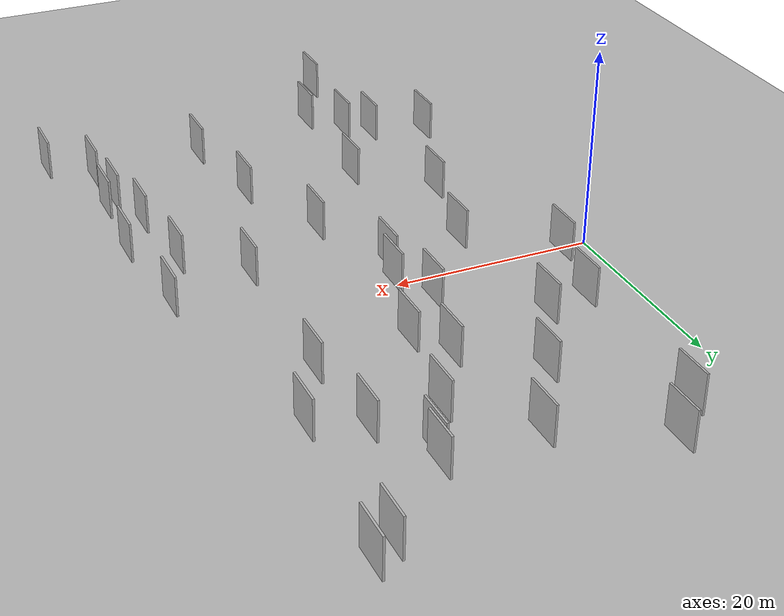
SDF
<?xml version="1.0" encoding="utf-8"?>

<sdf version="1.6">

   <world name="default">

      <gui fullscreen="0">

         <camera name="user_camera">

            <pose>-15 0 4.57585 0 0 0</pose>

            <view_controller>orbit</view_controller>

         </camera>

      </gui>

      <scene>

         <sky>

           <clouds>

             <speed>12</speed>

           </clouds>

         </sky>

         <ambient>0.4 0.4 0.4 1</ambient>

         <background>0.7 0.7 0.7 1</background>

         <shadows>1</shadows>

      </scene>

      <gravity>0 0 -9.8066</gravity>

      <magnetic_field>6e-06 2.3e-05 -4.2e-05</magnetic_field>

      <physics default="0" name="default_physics" type="ode">

         <ode>

            <solver>

               <type>quick</type>

               <iters>10</iters>

               <sor>1.0</sor>

               <use_dynamic_moi_rescaling>0</use_dynamic_moi_rescaling>

            </solver>

            <constraints>

               <cfm>0</cfm>

               <erp>0.2</erp>

               <contact_max_correcting_vel>100</contact_max_correcting_vel>

               <contact_surface_layer>0.001</contact_surface_layer>

            </constraints>

         </ode>

         <max_step_size>0.004</max_step_size>

         <real_time_factor>1</real_time_factor>

         <real_time_update_rate>250</real_time_update_rate>

      </physics>

      <light name="sun" type="directional">

         <cast_shadows>1</cast_shadows>

         <pose>0 0 10 0 0 0</pose>

         <diffuse>0.8 0.8 0.8 1</diffuse>

         <specular>0.2 0.2 0.2 1</specular>

         <attenuation>

            <range>1000</range>

            <constant>0.9</constant>

            <linear>0.01</linear>

            <quadratic>0.001</quadratic>

         </attenuation>

         <direction>-0.5 0.1 -0.9</direction>

      </light>

      <include>

         <name>ground_plane_1</name>

         <uri>model://HANNAS_ground_plane</uri>

         <pose>0 0 0  0 0 0</pose>

      </include>

      <include>

         <name>ground_plane_2</name>

         <uri>model://HANNAS_ground_plane</uri>

         <pose>100 0 0  0 0 0</pose>

      </include>

      <model name="HANNAS_wall_1">

         <static>1</static>

         <pose frame="">39.0134 36.8604 2.5 0.000000 0.000000 1.570796</pose>

         <link name="link">

            <pose frame="">0 0 2.00 0 0 0</pose>

            <collision name="collision">

               <geometry>

                  <box>

                     <size>4.00 0.2 4.00</size>

                  </box>

               </geometry>

               <max_contacts>10</max_contacts>

               <surface>

                  <contact>

                     <ode/>

                  </contact>

                  <bounce/>

                  <friction>

                     <torsional>

                        <ode/>

                     </torsional>

                     <ode/>

                  </friction>

               </surface>

            </collision>

            <visual name="visual">

               <cast_shadows>0</cast_shadows>

               <geometry>

                  <box>

                     <size>4.00 0.2 4.00</size>

                  </box>

               </geometry>

               <material>

                  <script>

                     <uri>model://HANNAS_wall/materials/scripts</uri>

                     <uri>model://HANNAS_wall/materials/textures</uri>

                     <name>vrc/HANNAS_wall</name>

                  </script>

               </material>

            </visual>

            <self_collide>0</self_collide>

            <enable_wind>0</enable_wind>

            <kinematic>0</kinematic>

         </link>

      </model>

      <model name="HANNAS_wall_2">

         <static>1</static>

         <pose frame="">38.7398 -7.8205 2.5 0.000000 0.000000 1.570796</pose>

         <link name="link">

            <pose frame="">0 0 2.00 0 0 0</pose>

            <collision name="collision">

               <geometry>

                  <box>

                     <size>4.00 0.2 4.00</size>

                  </box>

               </geometry>

               <max_contacts>10</max_contacts>

               <surface>

                  <contact>

                     <ode/>

                  </contact>

                  <bounce/>

                  <friction>

                     <torsional>

                        <ode/>

                     </torsional>

                     <ode/>

                  </friction>

               </surface>

            </collision>

            <visual name="visual">

               <cast_shadows>0</cast_shadows>

               <geometry>

                  <box>

                     <size>4.00 0.2 4.00</size>

                  </box>

               </geometry>

               <material>

                  <script>

                     <uri>model://HANNAS_wall/materials/scripts</uri>

                     <uri>model://HANNAS_wall/materials/textures</uri>

                     <name>vrc/HANNAS_wall</name>

                  </script>

               </material>

            </visual>

            <self_collide>0</self_collide>

            <enable_wind>0</enable_wind>

            <kinematic>0</kinematic>

         </link>

      </model>

      <model name="HANNAS_wall_3">

         <static>1</static>

         <pose frame="">24.6371 12.2118 2.5 0.000000 0.000000 1.570796</pose>

         <link name="link">

            <pose frame="">0 0 2.00 0 0 0</pose>

            <collision name="collision">

               <geometry>

                  <box>

                     <size>4.00 0.2 4.00</size>

                  </box>

               </geometry>

               <max_contacts>10</max_contacts>

               <surface>

                  <contact>

                     <ode/>

                  </contact>

                  <bounce/>

                  <friction>

                     <torsional>

                        <ode/>

                     </torsional>

                     <ode/>

                  </friction>

               </surface>

            </collision>

            <visual name="visual">

               <cast_shadows>0</cast_shadows>

               <geometry>

                  <box>

                     <size>4.00 0.2 4.00</size>

                  </box>

               </geometry>

               <material>

                  <script>

                     <uri>model://HANNAS_wall/materials/scripts</uri>

                     <uri>model://HANNAS_wall/materials/textures</uri>

                     <name>vrc/HANNAS_wall</name>

                  </script>

               </material>

            </visual>

            <self_collide>0</self_collide>

            <enable_wind>0</enable_wind>

            <kinematic>0</kinematic>

         </link>

      </model>

      <model name="HANNAS_wall_4">

         <static>1</static>

         <pose frame="">32.9320 22.3779 2.5 0.000000 0.000000 1.570796</pose>

         <link name="link">

            <pose frame="">0 0 2.00 0 0 0</pose>

            <collision name="collision">

               <geometry>

                  <box>

                     <size>4.00 0.2 4.00</size>

                  </box>

               </geometry>

               <max_contacts>10</max_contacts>

               <surface>

                  <contact>

                     <ode/>

                  </contact>

                  <bounce/>

                  <friction>

                     <torsional>

                        <ode/>

                     </torsional>

                     <ode/>

                  </friction>

               </surface>

            </collision>

            <visual name="visual">

               <cast_shadows>0</cast_shadows>

               <geometry>

                  <box>

                     <size>4.00 0.2 4.00</size>

                  </box>

               </geometry>

               <material>

                  <script>

                     <uri>model://HANNAS_wall/materials/scripts</uri>

                     <uri>model://HANNAS_wall/materials/textures</uri>

                     <name>vrc/HANNAS_wall</name>

                  </script>

               </material>

            </visual>

            <self_collide>0</self_collide>

            <enable_wind>0</enable_wind>

            <kinematic>0</kinematic>

         </link>

      </model>

      <model name="HANNAS_wall_5">

         <static>1</static>

         <pose frame="">40.7727 -21.5991 2.5 0.000000 0.000000 1.570796</pose>

         <link name="link">

            <pose frame="">0 0 2.00 0 0 0</pose>

            <collision name="collision">

               <geometry>

                  <box>

                     <size>4.00 0.2 4.00</size>

                  </box>

               </geometry>

               <max_contacts>10</max_contacts>

               <surface>

                  <contact>

                     <ode/>

                  </contact>

                  <bounce/>

                  <friction>

                     <torsional>

                        <ode/>

                     </torsional>

                     <ode/>

                  </friction>

               </surface>

            </collision>

            <visual name="visual">

               <cast_shadows>0</cast_shadows>

               <geometry>

                  <box>

                     <size>4.00 0.2 4.00</size>

                  </box>

               </geometry>

               <material>

                  <script>

                     <uri>model://HANNAS_wall/materials/scripts</uri>

                     <uri>model://HANNAS_wall/materials/textures</uri>

                     <name>vrc/HANNAS_wall</name>

                  </script>

               </material>

            </visual>

            <self_collide>0</self_collide>

            <enable_wind>0</enable_wind>

            <kinematic>0</kinematic>

         </link>

      </model>

      <model name="HANNAS_wall_6">

         <static>1</static>

         <pose frame="">37.4155 20.2576 2.5 0.000000 0.000000 1.570796</pose>

         <link name="link">

            <pose frame="">0 0 2.00 0 0 0</pose>

            <collision name="collision">

               <geometry>

                  <box>

                     <size>4.00 0.2 4.00</size>

                  </box>

               </geometry>

               <max_contacts>10</max_contacts>

               <surface>

                  <contact>

                     <ode/>

                  </contact>

                  <bounce/>

                  <friction>

                     <torsional>

                        <ode/>

                     </torsional>

                     <ode/>

                  </friction>

               </surface>

            </collision>

            <visual name="visual">

               <cast_shadows>0</cast_shadows>

               <geometry>

                  <box>

                     <size>4.00 0.2 4.00</size>

                  </box>

               </geometry>

               <material>

                  <script>

                     <uri>model://HANNAS_wall/materials/scripts</uri>

                     <uri>model://HANNAS_wall/materials/textures</uri>

                     <name>vrc/HANNAS_wall</name>

                  </script>

               </material>

            </visual>

            <self_collide>0</self_collide>

            <enable_wind>0</enable_wind>

            <kinematic>0</kinematic>

         </link>

      </model>

      <model name="HANNAS_wall_7">

         <static>1</static>

         <pose frame="">45.2404 -31.1126 2.5 0.000000 0.000000 1.570796</pose>

         <link name="link">

            <pose frame="">0 0 2.00 0 0 0</pose>

            <collision name="collision">

               <geometry>

                  <box>

                     <size>4.00 0.2 4.00</size>

                  </box>

               </geometry>

               <max_contacts>10</max_contacts>

               <surface>

                  <contact>

                     <ode/>

                  </contact>

                  <bounce/>

                  <friction>

                     <torsional>

                        <ode/>

                     </torsional>

                     <ode/>

                  </friction>

               </surface>

            </collision>

            <visual name="visual">

               <cast_shadows>0</cast_shadows>

               <geometry>

                  <box>

                     <size>4.00 0.2 4.00</size>

                  </box>

               </geometry>

               <material>

                  <script>

                     <uri>model://HANNAS_wall/materials/scripts</uri>

                     <uri>model://HANNAS_wall/materials/textures</uri>

                     <name>vrc/HANNAS_wall</name>

                  </script>

               </material>

            </visual>

            <self_collide>0</self_collide>

            <enable_wind>0</enable_wind>

            <kinematic>0</kinematic>

         </link>

      </model>

      <model name="HANNAS_wall_8">

         <static>1</static>

         <pose frame="">33.8251 13.3349 2.5 0.000000 0.000000 1.570796</pose>

         <link name="link">

            <pose frame="">0 0 2.00 0 0 0</pose>

            <collision name="collision">

               <geometry>

                  <box>

                     <size>4.00 0.2 4.00</size>

                  </box>

               </geometry>

               <max_contacts>10</max_contacts>

               <surface>

                  <contact>

                     <ode/>

                  </contact>

                  <bounce/>

                  <friction>

                     <torsional>

                        <ode/>

                     </torsional>

                     <ode/>

                  </friction>

               </surface>

            </collision>

            <visual name="visual">

               <cast_shadows>0</cast_shadows>

               <geometry>

                  <box>

                     <size>4.00 0.2 4.00</size>

                  </box>

               </geometry>

               <material>

                  <script>

                     <uri>model://HANNAS_wall/materials/scripts</uri>

                     <uri>model://HANNAS_wall/materials/textures</uri>

                     <name>vrc/HANNAS_wall</name>

                  </script>

               </material>

            </visual>

            <self_collide>0</self_collide>

            <enable_wind>0</enable_wind>

            <kinematic>0</kinematic>

         </link>

      </model>

      <model name="HANNAS_wall_9">

         <static>1</static>

         <pose frame="">10.6531 -11.6254 2.5 0.000000 0.000000 1.570796</pose>

         <link name="link">

            <pose frame="">0 0 2.00 0 0 0</pose>

            <collision name="collision">

               <geometry>

                  <box>

                     <size>4.00 0.2 4.00</size>

                  </box>

               </geometry>

               <max_contacts>10</max_contacts>

               <surface>

                  <contact>

                     <ode/>

                  </contact>

                  <bounce/>

                  <friction>

                     <torsional>

                        <ode/>

                     </torsional>

                     <ode/>

                  </friction>

               </surface>

            </collision>

            <visual name="visual">

               <cast_shadows>0</cast_shadows>

               <geometry>

                  <box>

                     <size>4.00 0.2 4.00</size>

                  </box>

               </geometry>

               <material>

                  <script>

                     <uri>model://HANNAS_wall/materials/scripts</uri>

                     <uri>model://HANNAS_wall/materials/textures</uri>

                     <name>vrc/HANNAS_wall</name>

                  </script>

               </material>

            </visual>

            <self_collide>0</self_collide>

            <enable_wind>0</enable_wind>

            <kinematic>0</kinematic>

         </link>

      </model>

      <model name="HANNAS_wall_10">

         <static>1</static>

         <pose frame="">19.7617 6.8065 2.5 0.000000 0.000000 1.570796</pose>

         <link name="link">

            <pose frame="">0 0 2.00 0 0 0</pose>

            <collision name="collision">

               <geometry>

                  <box>

                     <size>4.00 0.2 4.00</size>

                  </box>

               </geometry>

               <max_contacts>10</max_contacts>

               <surface>

                  <contact>

                     <ode/>

                  </contact>

                  <bounce/>

                  <friction>

                     <torsional>

                        <ode/>

                     </torsional>

                     <ode/>

                  </friction>

               </surface>

            </collision>

            <visual name="visual">

               <cast_shadows>0</cast_shadows>

               <geometry>

                  <box>

                     <size>4.00 0.2 4.00</size>

                  </box>

               </geometry>

               <material>

                  <script>

                     <uri>model://HANNAS_wall/materials/scripts</uri>

                     <uri>model://HANNAS_wall/materials/textures</uri>

                     <name>vrc/HANNAS_wall</name>

                  </script>

               </material>

            </visual>

            <self_collide>0</self_collide>

            <enable_wind>0</enable_wind>

            <kinematic>0</kinematic>

         </link>

      </model>

      <model name="HANNAS_wall_11">

         <static>1</static>

         <pose frame="">11.3682 -26.1498 2.5 0.000000 0.000000 1.570796</pose>

         <link name="link">

            <pose frame="">0 0 2.00 0 0 0</pose>

            <collision name="collision">

               <geometry>

                  <box>

                     <size>4.00 0.2 4.00</size>

                  </box>

               </geometry>

               <max_contacts>10</max_contacts>

               <surface>

                  <contact>

                     <ode/>

                  </contact>

                  <bounce/>

                  <friction>

                     <torsional>

                        <ode/>

                     </torsional>

                     <ode/>

                  </friction>

               </surface>

            </collision>

            <visual name="visual">

               <cast_shadows>0</cast_shadows>

               <geometry>

                  <box>

                     <size>4.00 0.2 4.00</size>

                  </box>

               </geometry>

               <material>

                  <script>

                     <uri>model://HANNAS_wall/materials/scripts</uri>

                     <uri>model://HANNAS_wall/materials/textures</uri>

                     <name>vrc/HANNAS_wall</name>

                  </script>

               </material>

            </visual>

            <self_collide>0</self_collide>

            <enable_wind>0</enable_wind>

            <kinematic>0</kinematic>

         </link>

      </model>

      <model name="HANNAS_wall_12">

         <static>1</static>

         <pose frame="">42.4686 -11.6364 2.5 0.000000 0.000000 1.570796</pose>

         <link name="link">

            <pose frame="">0 0 2.00 0 0 0</pose>

            <collision name="collision">

               <geometry>

                  <box>

                     <size>4.00 0.2 4.00</size>

                  </box>

               </geometry>

               <max_contacts>10</max_contacts>

               <surface>

                  <contact>

                     <ode/>

                  </contact>

                  <bounce/>

                  <friction>

                     <torsional>

                        <ode/>

                     </torsional>

                     <ode/>

                  </friction>

               </surface>

            </collision>

            <visual name="visual">

               <cast_shadows>0</cast_shadows>

               <geometry>

                  <box>

                     <size>4.00 0.2 4.00</size>

                  </box>

               </geometry>

               <material>

                  <script>

                     <uri>model://HANNAS_wall/materials/scripts</uri>

                     <uri>model://HANNAS_wall/materials/textures</uri>

                     <name>vrc/HANNAS_wall</name>

                  </script>

               </material>

            </visual>

            <self_collide>0</self_collide>

            <enable_wind>0</enable_wind>

            <kinematic>0</kinematic>

         </link>

      </model>

      <model name="HANNAS_wall_13">

         <static>1</static>

         <pose frame="">5.9294 -24.2866 2.5 0.000000 0.000000 1.570796</pose>

         <link name="link">

            <pose frame="">0 0 2.00 0 0 0</pose>

            <collision name="collision">

               <geometry>

                  <box>

                     <size>4.00 0.2 4.00</size>

                  </box>

               </geometry>

               <max_contacts>10</max_contacts>

               <surface>

                  <contact>

                     <ode/>

                  </contact>

                  <bounce/>

                  <friction>

                     <torsional>

                        <ode/>

                     </torsional>

                     <ode/>

                  </friction>

               </surface>

            </collision>

            <visual name="visual">

               <cast_shadows>0</cast_shadows>

               <geometry>

                  <box>

                     <size>4.00 0.2 4.00</size>

                  </box>

               </geometry>

               <material>

                  <script>

                     <uri>model://HANNAS_wall/materials/scripts</uri>

                     <uri>model://HANNAS_wall/materials/textures</uri>

                     <name>vrc/HANNAS_wall</name>

                  </script>

               </material>

            </visual>

            <self_collide>0</self_collide>

            <enable_wind>0</enable_wind>

            <kinematic>0</kinematic>

         </link>

      </model>

      <model name="HANNAS_wall_14">

         <static>1</static>

         <pose frame="">24.6524 -8.5791 2.5 0.000000 0.000000 1.570796</pose>

         <link name="link">

            <pose frame="">0 0 2.00 0 0 0</pose>

            <collision name="collision">

               <geometry>

                  <box>

                     <size>4.00 0.2 4.00</size>

                  </box>

               </geometry>

               <max_contacts>10</max_contacts>

               <surface>

                  <contact>

                     <ode/>

                  </contact>

                  <bounce/>

                  <friction>

                     <torsional>

                        <ode/>

                     </torsional>

                     <ode/>

                  </friction>

               </surface>

            </collision>

            <visual name="visual">

               <cast_shadows>0</cast_shadows>

               <geometry>

                  <box>

                     <size>4.00 0.2 4.00</size>

                  </box>

               </geometry>

               <material>

                  <script>

                     <uri>model://HANNAS_wall/materials/scripts</uri>

                     <uri>model://HANNAS_wall/materials/textures</uri>

                     <name>vrc/HANNAS_wall</name>

                  </script>

               </material>

            </visual>

            <self_collide>0</self_collide>

            <enable_wind>0</enable_wind>

            <kinematic>0</kinematic>

         </link>

      </model>

      <model name="HANNAS_wall_15">

         <static>1</static>

         <pose frame="">41.9282 -20.5291 2.5 0.000000 0.000000 1.570796</pose>

         <link name="link">

            <pose frame="">0 0 2.00 0 0 0</pose>

            <collision name="collision">

               <geometry>

                  <box>

                     <size>4.00 0.2 4.00</size>

                  </box>

               </geometry>

               <max_contacts>10</max_contacts>

               <surface>

                  <contact>

                     <ode/>

                  </contact>

                  <bounce/>

                  <friction>

                     <torsional>

                        <ode/>

                     </torsional>

                     <ode/>

                  </friction>

               </surface>

            </collision>

            <visual name="visual">

               <cast_shadows>0</cast_shadows>

               <geometry>

                  <box>

                     <size>4.00 0.2 4.00</size>

                  </box>

               </geometry>

               <material>

                  <script>

                     <uri>model://HANNAS_wall/materials/scripts</uri>

                     <uri>model://HANNAS_wall/materials/textures</uri>

                     <name>vrc/HANNAS_wall</name>

                  </script>

               </material>

            </visual>

            <self_collide>0</self_collide>

            <enable_wind>0</enable_wind>

            <kinematic>0</kinematic>

         </link>

      </model>

      <model name="HANNAS_wall_16">

         <static>1</static>

         <pose frame="">13.0141 -38.7148 2.5 0.000000 0.000000 1.570796</pose>

         <link name="link">

            <pose frame="">0 0 2.00 0 0 0</pose>

            <collision name="collision">

               <geometry>

                  <box>

                     <size>4.00 0.2 4.00</size>

                  </box>

               </geometry>

               <max_contacts>10</max_contacts>

               <surface>

                  <contact>

                     <ode/>

                  </contact>

                  <bounce/>

                  <friction>

                     <torsional>

                        <ode/>

                     </torsional>

                     <ode/>

                  </friction>

               </surface>

            </collision>

            <visual name="visual">

               <cast_shadows>0</cast_shadows>

               <geometry>

                  <box>

                     <size>4.00 0.2 4.00</size>

                  </box>

               </geometry>

               <material>

                  <script>

                     <uri>model://HANNAS_wall/materials/scripts</uri>

                     <uri>model://HANNAS_wall/materials/textures</uri>

                     <name>vrc/HANNAS_wall</name>

                  </script>

               </material>

            </visual>

            <self_collide>0</self_collide>

            <enable_wind>0</enable_wind>

            <kinematic>0</kinematic>

         </link>

      </model>

      <model name="HANNAS_wall_17">

         <static>1</static>

         <pose frame="">22.3509 15.6423 2.5 0.000000 0.000000 1.570796</pose>

         <link name="link">

            <pose frame="">0 0 2.00 0 0 0</pose>

            <collision name="collision">

               <geometry>

                  <box>

                     <size>4.00 0.2 4.00</size>

                  </box>

               </geometry>

               <max_contacts>10</max_contacts>

               <surface>

                  <contact>

                     <ode/>

                  </contact>

                  <bounce/>

                  <friction>

                     <torsional>

                        <ode/>

                     </torsional>

                     <ode/>

                  </friction>

               </surface>

            </collision>

            <visual name="visual">

               <cast_shadows>0</cast_shadows>

               <geometry>

                  <box>

                     <size>4.00 0.2 4.00</size>

                  </box>

               </geometry>

               <material>

                  <script>

                     <uri>model://HANNAS_wall/materials/scripts</uri>

                     <uri>model://HANNAS_wall/materials/textures</uri>

                     <name>vrc/HANNAS_wall</name>

                  </script>

               </material>

            </visual>

            <self_collide>0</self_collide>

            <enable_wind>0</enable_wind>

            <kinematic>0</kinematic>

         </link>

      </model>

      <model name="HANNAS_wall_18">

         <static>1</static>

         <pose frame="">33.3557 -3.2008 2.5 0.000000 0.000000 1.570796</pose>

         <link name="link">

            <pose frame="">0 0 2.00 0 0 0</pose>

            <collision name="collision">

               <geometry>

                  <box>

                     <size>4.00 0.2 4.00</size>

                  </box>

               </geometry>

               <max_contacts>10</max_contacts>

               <surface>

                  <contact>

                     <ode/>

                  </contact>

                  <bounce/>

                  <friction>

                     <torsional>

                        <ode/>

                     </torsional>

                     <ode/>

                  </friction>

               </surface>

            </collision>

            <visual name="visual">

               <cast_shadows>0</cast_shadows>

               <geometry>

                  <box>

                     <size>4.00 0.2 4.00</size>

                  </box>

               </geometry>

               <material>

                  <script>

                     <uri>model://HANNAS_wall/materials/scripts</uri>

                     <uri>model://HANNAS_wall/materials/textures</uri>

                     <name>vrc/HANNAS_wall</name>

                  </script>

               </material>

            </visual>

            <self_collide>0</self_collide>

            <enable_wind>0</enable_wind>

            <kinematic>0</kinematic>

         </link>

      </model>

      <model name="HANNAS_wall_19">

         <static>1</static>

         <pose frame="">7.2029 11.9406 2.5 0.000000 0.000000 1.570796</pose>

         <link name="link">

            <pose frame="">0 0 2.00 0 0 0</pose>

            <collision name="collision">

               <geometry>

                  <box>

                     <size>4.00 0.2 4.00</size>

                  </box>

               </geometry>

               <max_contacts>10</max_contacts>

               <surface>

                  <contact>

                     <ode/>

                  </contact>

                  <bounce/>

                  <friction>

                     <torsional>

                        <ode/>

                     </torsional>

                     <ode/>

                  </friction>

               </surface>

            </collision>

            <visual name="visual">

               <cast_shadows>0</cast_shadows>

               <geometry>

                  <box>

                     <size>4.00 0.2 4.00</size>

                  </box>

               </geometry>

               <material>

                  <script>

                     <uri>model://HANNAS_wall/materials/scripts</uri>

                     <uri>model://HANNAS_wall/materials/textures</uri>

                     <name>vrc/HANNAS_wall</name>

                  </script>

               </material>

            </visual>

            <self_collide>0</self_collide>

            <enable_wind>0</enable_wind>

            <kinematic>0</kinematic>

         </link>

      </model>

      <model name="HANNAS_wall_20">

         <static>1</static>

         <pose frame="">29.9802 -28.0832 2.5 0.000000 0.000000 1.570796</pose>

         <link name="link">

            <pose frame="">0 0 2.00 0 0 0</pose>

            <collision name="collision">

               <geometry>

                  <box>

                     <size>4.00 0.2 4.00</size>

                  </box>

               </geometry>

               <max_contacts>10</max_contacts>

               <surface>

                  <contact>

                     <ode/>

                  </contact>

                  <bounce/>

                  <friction>

                     <torsional>

                        <ode/>

                     </torsional>

                     <ode/>

                  </friction>

               </surface>

            </collision>

            <visual name="visual">

               <cast_shadows>0</cast_shadows>

               <geometry>

                  <box>

                     <size>4.00 0.2 4.00</size>

                  </box>

               </geometry>

               <material>

                  <script>

                     <uri>model://HANNAS_wall/materials/scripts</uri>

                     <uri>model://HANNAS_wall/materials/textures</uri>

                     <name>vrc/HANNAS_wall</name>

                  </script>

               </material>

            </visual>

            <self_collide>0</self_collide>

            <enable_wind>0</enable_wind>

            <kinematic>0</kinematic>

         </link>

      </model>

      <model name="HANNAS_wall_21">

         <static>1</static>

         <pose frame="">11.6890 13.0171 2.5 0.000000 0.000000 1.570796</pose>

         <link name="link">

            <pose frame="">0 0 2.00 0 0 0</pose>

            <collision name="collision">

               <geometry>

                  <box>

                     <size>4.00 0.2 4.00</size>

                  </box>

               </geometry>

               <max_contacts>10</max_contacts>

               <surface>

                  <contact>

                     <ode/>

                  </contact>

                  <bounce/>

                  <friction>

                     <torsional>

                        <ode/>

                     </torsional>

                     <ode/>

                  </friction>

               </surface>

            </collision>

            <visual name="visual">

               <cast_shadows>0</cast_shadows>

               <geometry>

                  <box>

                     <size>4.00 0.2 4.00</size>

                  </box>

               </geometry>

               <material>

                  <script>

                     <uri>model://HANNAS_wall/materials/scripts</uri>

                     <uri>model://HANNAS_wall/materials/textures</uri>

                     <name>vrc/HANNAS_wall</name>

                  </script>

               </material>

            </visual>

            <self_collide>0</self_collide>

            <enable_wind>0</enable_wind>

            <kinematic>0</kinematic>

         </link>

      </model>

      <model name="HANNAS_wall_22">

         <static>1</static>

         <pose frame="">17.1662 -17.5642 2.5 0.000000 0.000000 1.570796</pose>

         <link name="link">

            <pose frame="">0 0 2.00 0 0 0</pose>

            <collision name="collision">

               <geometry>

                  <box>

                     <size>4.00 0.2 4.00</size>

                  </box>

               </geometry>

               <max_contacts>10</max_contacts>

               <surface>

                  <contact>

                     <ode/>

                  </contact>

                  <bounce/>

                  <friction>

                     <torsional>

                        <ode/>

                     </torsional>

                     <ode/>

                  </friction>

               </surface>

            </collision>

            <visual name="visual">

               <cast_shadows>0</cast_shadows>

               <geometry>

                  <box>

                     <size>4.00 0.2 4.00</size>

                  </box>

               </geometry>

               <material>

                  <script>

                     <uri>model://HANNAS_wall/materials/scripts</uri>

                     <uri>model://HANNAS_wall/materials/textures</uri>

                     <name>vrc/HANNAS_wall</name>

                  </script>

               </material>

            </visual>

            <self_collide>0</self_collide>

            <enable_wind>0</enable_wind>

            <kinematic>0</kinematic>

         </link>

      </model>

      <model name="HANNAS_wall_23">

         <static>1</static>

         <pose frame="">20.6948 28.2850 2.5 0.000000 0.000000 1.570796</pose>

         <link name="link">

            <pose frame="">0 0 2.00 0 0 0</pose>

            <collision name="collision">

               <geometry>

                  <box>

                     <size>4.00 0.2 4.00</size>

                  </box>

               </geometry>

               <max_contacts>10</max_contacts>

               <surface>

                  <contact>

                     <ode/>

                  </contact>

                  <bounce/>

                  <friction>

                     <torsional>

                        <ode/>

                     </torsional>

                     <ode/>

                  </friction>

               </surface>

            </collision>

            <visual name="visual">

               <cast_shadows>0</cast_shadows>

               <geometry>

                  <box>

                     <size>4.00 0.2 4.00</size>

                  </box>

               </geometry>

               <material>

                  <script>

                     <uri>model://HANNAS_wall/materials/scripts</uri>

                     <uri>model://HANNAS_wall/materials/textures</uri>

                     <name>vrc/HANNAS_wall</name>

                  </script>

               </material>

            </visual>

            <self_collide>0</self_collide>

            <enable_wind>0</enable_wind>

            <kinematic>0</kinematic>

         </link>

      </model>

      <model name="HANNAS_wall_24">

         <static>1</static>

         <pose frame="">16.0948 20.7748 2.5 0.000000 0.000000 1.570796</pose>

         <link name="link">

            <pose frame="">0 0 2.00 0 0 0</pose>

            <collision name="collision">

               <geometry>

                  <box>

                     <size>4.00 0.2 4.00</size>

                  </box>

               </geometry>

               <max_contacts>10</max_contacts>

               <surface>

                  <contact>

                     <ode/>

                  </contact>

                  <bounce/>

                  <friction>

                     <torsional>

                        <ode/>

                     </torsional>

                     <ode/>

                  </friction>

               </surface>

            </collision>

            <visual name="visual">

               <cast_shadows>0</cast_shadows>

               <geometry>

                  <box>

                     <size>4.00 0.2 4.00</size>

                  </box>

               </geometry>

               <material>

                  <script>

                     <uri>model://HANNAS_wall/materials/scripts</uri>

                     <uri>model://HANNAS_wall/materials/textures</uri>

                     <name>vrc/HANNAS_wall</name>

                  </script>

               </material>

            </visual>

            <self_collide>0</self_collide>

            <enable_wind>0</enable_wind>

            <kinematic>0</kinematic>

         </link>

      </model>

      <model name="HANNAS_wall_25">

         <static>1</static>

         <pose frame="">26.5294 22.2256 2.5 0.000000 0.000000 1.570796</pose>

         <link name="link">

            <pose frame="">0 0 2.00 0 0 0</pose>

            <collision name="collision">

               <geometry>

                  <box>

                     <size>4.00 0.2 4.00</size>

                  </box>

               </geometry>

               <max_contacts>10</max_contacts>

               <surface>

                  <contact>

                     <ode/>

                  </contact>

                  <bounce/>

                  <friction>

                     <torsional>

                        <ode/>

                     </torsional>

                     <ode/>

                  </friction>

               </surface>

            </collision>

            <visual name="visual">

               <cast_shadows>0</cast_shadows>

               <geometry>

                  <box>

                     <size>4.00 0.2 4.00</size>

                  </box>

               </geometry>

               <material>

                  <script>

                     <uri>model://HANNAS_wall/materials/scripts</uri>

                     <uri>model://HANNAS_wall/materials/textures</uri>

                     <name>vrc/HANNAS_wall</name>

                  </script>

               </material>

            </visual>

            <self_collide>0</self_collide>

            <enable_wind>0</enable_wind>

            <kinematic>0</kinematic>

         </link>

      </model>

      <model name="HANNAS_wall_26">

         <static>1</static>

         <pose frame="">36.8436 35.5053 2.5 0.000000 0.000000 1.570796</pose>

         <link name="link">

            <pose frame="">0 0 2.00 0 0 0</pose>

            <collision name="collision">

               <geometry>

                  <box>

                     <size>4.00 0.2 4.00</size>

                  </box>

               </geometry>

               <max_contacts>10</max_contacts>

               <surface>

                  <contact>

                     <ode/>

                  </contact>

                  <bounce/>

                  <friction>

                     <torsional>

                        <ode/>

                     </torsional>

                     <ode/>

                  </friction>

               </surface>

            </collision>

            <visual name="visual">

               <cast_shadows>0</cast_shadows>

               <geometry>

                  <box>

                     <size>4.00 0.2 4.00</size>

                  </box>

               </geometry>

               <material>

                  <script>

                     <uri>model://HANNAS_wall/materials/scripts</uri>

                     <uri>model://HANNAS_wall/materials/textures</uri>

                     <name>vrc/HANNAS_wall</name>

                  </script>

               </material>

            </visual>

            <self_collide>0</self_collide>

            <enable_wind>0</enable_wind>

            <kinematic>0</kinematic>

         </link>

      </model>

      <model name="HANNAS_wall_27">

         <static>1</static>

         <pose frame="">7.8432 29.3273 2.5 0.000000 0.000000 1.570796</pose>

         <link name="link">

            <pose frame="">0 0 2.00 0 0 0</pose>

            <collision name="collision">

               <geometry>

                  <box>

                     <size>4.00 0.2 4.00</size>

                  </box>

               </geometry>

               <max_contacts>10</max_contacts>

               <surface>

                  <contact>

                     <ode/>

                  </contact>

                  <bounce/>

                  <friction>

                     <torsional>

                        <ode/>

                     </torsional>

                     <ode/>

                  </friction>

               </surface>

            </collision>

            <visual name="visual">

               <cast_shadows>0</cast_shadows>

               <geometry>

                  <box>

                     <size>4.00 0.2 4.00</size>

                  </box>

               </geometry>

               <material>

                  <script>

                     <uri>model://HANNAS_wall/materials/scripts</uri>

                     <uri>model://HANNAS_wall/materials/textures</uri>

                     <name>vrc/HANNAS_wall</name>

                  </script>

               </material>

            </visual>

            <self_collide>0</self_collide>

            <enable_wind>0</enable_wind>

            <kinematic>0</kinematic>

         </link>

      </model>

      <model name="HANNAS_wall_28">

         <static>1</static>

         <pose frame="">39.5369 -16.3894 2.5 0.000000 0.000000 1.570796</pose>

         <link name="link">

            <pose frame="">0 0 2.00 0 0 0</pose>

            <collision name="collision">

               <geometry>

                  <box>

                     <size>4.00 0.2 4.00</size>

                  </box>

               </geometry>

               <max_contacts>10</max_contacts>

               <surface>

                  <contact>

                     <ode/>

                  </contact>

                  <bounce/>

                  <friction>

                     <torsional>

                        <ode/>

                     </torsional>

                     <ode/>

                  </friction>

               </surface>

            </collision>

            <visual name="visual">

               <cast_shadows>0</cast_shadows>

               <geometry>

                  <box>

                     <size>4.00 0.2 4.00</size>

                  </box>

               </geometry>

               <material>

                  <script>

                     <uri>model://HANNAS_wall/materials/scripts</uri>

                     <uri>model://HANNAS_wall/materials/textures</uri>

                     <name>vrc/HANNAS_wall</name>

                  </script>

               </material>

            </visual>

            <self_collide>0</self_collide>

            <enable_wind>0</enable_wind>

            <kinematic>0</kinematic>

         </link>

      </model>

      <model name="HANNAS_wall_29">

         <static>1</static>

         <pose frame="">13.0345 -1.8233 2.5 0.000000 0.000000 1.570796</pose>

         <link name="link">

            <pose frame="">0 0 2.00 0 0 0</pose>

            <collision name="collision">

               <geometry>

                  <box>

                     <size>4.00 0.2 4.00</size>

                  </box>

               </geometry>

               <max_contacts>10</max_contacts>

               <surface>

                  <contact>

                     <ode/>

                  </contact>

                  <bounce/>

                  <friction>

                     <torsional>

                        <ode/>

                     </torsional>

                     <ode/>

                  </friction>

               </surface>

            </collision>

            <visual name="visual">

               <cast_shadows>0</cast_shadows>

               <geometry>

                  <box>

                     <size>4.00 0.2 4.00</size>

                  </box>

               </geometry>

               <material>

                  <script>

                     <uri>model://HANNAS_wall/materials/scripts</uri>

                     <uri>model://HANNAS_wall/materials/textures</uri>

                     <name>vrc/HANNAS_wall</name>

                  </script>

               </material>

            </visual>

            <self_collide>0</self_collide>

            <enable_wind>0</enable_wind>

            <kinematic>0</kinematic>

         </link>

      </model>

      <model name="HANNAS_wall_30">

         <static>1</static>

         <pose frame="">11.2155 33.1189 2.5 0.000000 0.000000 1.570796</pose>

         <link name="link">

            <pose frame="">0 0 2.00 0 0 0</pose>

            <collision name="collision">

               <geometry>

                  <box>

                     <size>4.00 0.2 4.00</size>

                  </box>

               </geometry>

               <max_contacts>10</max_contacts>

               <surface>

                  <contact>

                     <ode/>

                  </contact>

                  <bounce/>

                  <friction>

                     <torsional>

                        <ode/>

                     </torsional>

                     <ode/>

                  </friction>

               </surface>

            </collision>

            <visual name="visual">

               <cast_shadows>0</cast_shadows>

               <geometry>

                  <box>

                     <size>4.00 0.2 4.00</size>

                  </box>

               </geometry>

               <material>

                  <script>

                     <uri>model://HANNAS_wall/materials/scripts</uri>

                     <uri>model://HANNAS_wall/materials/textures</uri>

                     <name>vrc/HANNAS_wall</name>

                  </script>

               </material>

            </visual>

            <self_collide>0</self_collide>

            <enable_wind>0</enable_wind>

            <kinematic>0</kinematic>

         </link>

      </model>

      <model name="HANNAS_wall_31">

         <static>1</static>

         <pose frame="">16.5820 -31.3012 2.5 0.000000 0.000000 1.570796</pose>

         <link name="link">

            <pose frame="">0 0 2.00 0 0 0</pose>

            <collision name="collision">

               <geometry>

                  <box>

                     <size>4.00 0.2 4.00</size>

                  </box>

               </geometry>

               <max_contacts>10</max_contacts>

               <surface>

                  <contact>

                     <ode/>

                  </contact>

                  <bounce/>

                  <friction>

                     <torsional>

                        <ode/>

                     </torsional>

                     <ode/>

                  </friction>

               </surface>

            </collision>

            <visual name="visual">

               <cast_shadows>0</cast_shadows>

               <geometry>

                  <box>

                     <size>4.00 0.2 4.00</size>

                  </box>

               </geometry>

               <material>

                  <script>

                     <uri>model://HANNAS_wall/materials/scripts</uri>

                     <uri>model://HANNAS_wall/materials/textures</uri>

                     <name>vrc/HANNAS_wall</name>

                  </script>

               </material>

            </visual>

            <self_collide>0</self_collide>

            <enable_wind>0</enable_wind>

            <kinematic>0</kinematic>

         </link>

      </model>

      <model name="HANNAS_wall_32">

         <static>1</static>

         <pose frame="">21.8891 3.0301 2.5 0.000000 0.000000 1.570796</pose>

         <link name="link">

            <pose frame="">0 0 2.00 0 0 0</pose>

            <collision name="collision">

               <geometry>

                  <box>

                     <size>4.00 0.2 4.00</size>

                  </box>

               </geometry>

               <max_contacts>10</max_contacts>

               <surface>

                  <contact>

                     <ode/>

                  </contact>

                  <bounce/>

                  <friction>

                     <torsional>

                        <ode/>

                     </torsional>

                     <ode/>

                  </friction>

               </surface>

            </collision>

            <visual name="visual">

               <cast_shadows>0</cast_shadows>

               <geometry>

                  <box>

                     <size>4.00 0.2 4.00</size>

                  </box>

               </geometry>

               <material>

                  <script>

                     <uri>model://HANNAS_wall/materials/scripts</uri>

                     <uri>model://HANNAS_wall/materials/textures</uri>

                     <name>vrc/HANNAS_wall</name>

                  </script>

               </material>

            </visual>

            <self_collide>0</self_collide>

            <enable_wind>0</enable_wind>

            <kinematic>0</kinematic>

         </link>

      </model>

      <model name="HANNAS_wall_33">

         <static>1</static>

         <pose frame="">5.1146 4.1148 2.5 0.000000 0.000000 1.570796</pose>

         <link name="link">

            <pose frame="">0 0 2.00 0 0 0</pose>

            <collision name="collision">

               <geometry>

                  <box>

                     <size>4.00 0.2 4.00</size>

                  </box>

               </geometry>

               <max_contacts>10</max_contacts>

               <surface>

                  <contact>

                     <ode/>

                  </contact>

                  <bounce/>

                  <friction>

                     <torsional>

                        <ode/>

                     </torsional>

                     <ode/>

                  </friction>

               </surface>

            </collision>

            <visual name="visual">

               <cast_shadows>0</cast_shadows>

               <geometry>

                  <box>

                     <size>4.00 0.2 4.00</size>

                  </box>

               </geometry>

               <material>

                  <script>

                     <uri>model://HANNAS_wall/materials/scripts</uri>

                     <uri>model://HANNAS_wall/materials/textures</uri>

                     <name>vrc/HANNAS_wall</name>

                  </script>

               </material>

            </visual>

            <self_collide>0</self_collide>

            <enable_wind>0</enable_wind>

            <kinematic>0</kinematic>

         </link>

      </model>

      <model name="HANNAS_wall_34">

         <static>1</static>

         <pose frame="">28.4314 -17.9806 2.5 0.000000 0.000000 1.570796</pose>

         <link name="link">

            <pose frame="">0 0 2.00 0 0 0</pose>

            <collision name="collision">

               <geometry>

                  <box>

                     <size>4.00 0.2 4.00</size>

                  </box>

               </geometry>

               <max_contacts>10</max_contacts>

               <surface>

                  <contact>

                     <ode/>

                  </contact>

                  <bounce/>

                  <friction>

                     <torsional>

                        <ode/>

                     </torsional>

                     <ode/>

                  </friction>

               </surface>

            </collision>

            <visual name="visual">

               <cast_shadows>0</cast_shadows>

               <geometry>

                  <box>

                     <size>4.00 0.2 4.00</size>

                  </box>

               </geometry>

               <material>

                  <script>

                     <uri>model://HANNAS_wall/materials/scripts</uri>

                     <uri>model://HANNAS_wall/materials/textures</uri>

                     <name>vrc/HANNAS_wall</name>

                  </script>

               </material>

            </visual>

            <self_collide>0</self_collide>

            <enable_wind>0</enable_wind>

            <kinematic>0</kinematic>

         </link>

      </model>

      <model name="HANNAS_wall_35">

         <static>1</static>

         <pose frame="">20.9923 -0.0692 2.5 0.000000 0.000000 1.570796</pose>

         <link name="link">

            <pose frame="">0 0 2.00 0 0 0</pose>

            <collision name="collision">

               <geometry>

                  <box>

                     <size>4.00 0.2 4.00</size>

                  </box>

               </geometry>

               <max_contacts>10</max_contacts>

               <surface>

                  <contact>

                     <ode/>

                  </contact>

                  <bounce/>

                  <friction>

                     <torsional>

                        <ode/>

                     </torsional>

                     <ode/>

                  </friction>

               </surface>

            </collision>

            <visual name="visual">

               <cast_shadows>0</cast_shadows>

               <geometry>

                  <box>

                     <size>4.00 0.2 4.00</size>

                  </box>

               </geometry>

               <material>

                  <script>

                     <uri>model://HANNAS_wall/materials/scripts</uri>

                     <uri>model://HANNAS_wall/materials/textures</uri>

                     <name>vrc/HANNAS_wall</name>

                  </script>

               </material>

            </visual>

            <self_collide>0</self_collide>

            <enable_wind>0</enable_wind>

            <kinematic>0</kinematic>

         </link>

      </model>

      <model name="HANNAS_wall_36">

         <static>1</static>

         <pose frame="">29.3655 27.0623 2.5 0.000000 0.000000 1.570796</pose>

         <link name="link">

            <pose frame="">0 0 2.00 0 0 0</pose>

            <collision name="collision">

               <geometry>

                  <box>

                     <size>4.00 0.2 4.00</size>

                  </box>

               </geometry>

               <max_contacts>10</max_contacts>

               <surface>

                  <contact>

                     <ode/>

                  </contact>

                  <bounce/>

                  <friction>

                     <torsional>

                        <ode/>

                     </torsional>

                     <ode/>

                  </friction>

               </surface>

            </collision>

            <visual name="visual">

               <cast_shadows>0</cast_shadows>

               <geometry>

                  <box>

                     <size>4.00 0.2 4.00</size>

                  </box>

               </geometry>

               <material>

                  <script>

                     <uri>model://HANNAS_wall/materials/scripts</uri>

                     <uri>model://HANNAS_wall/materials/textures</uri>

                     <name>vrc/HANNAS_wall</name>

                  </script>

               </material>

            </visual>

            <self_collide>0</self_collide>

            <enable_wind>0</enable_wind>

            <kinematic>0</kinematic>

         </link>

      </model>

      <model name="HANNAS_wall_37">

         <static>1</static>

         <pose frame="">41.5450 -1.0645 2.5 0.000000 0.000000 1.570796</pose>

         <link name="link">

            <pose frame="">0 0 2.00 0 0 0</pose>

            <collision name="collision">

               <geometry>

                  <box>

                     <size>4.00 0.2 4.00</size>

                  </box>

               </geometry>

               <max_contacts>10</max_contacts>

               <surface>

                  <contact>

                     <ode/>

                  </contact>

                  <bounce/>

                  <friction>

                     <torsional>

                        <ode/>

                     </torsional>

                     <ode/>

                  </friction>

               </surface>

            </collision>

            <visual name="visual">

               <cast_shadows>0</cast_shadows>

               <geometry>

                  <box>

                     <size>4.00 0.2 4.00</size>

                  </box>

               </geometry>

               <material>

                  <script>

                     <uri>model://HANNAS_wall/materials/scripts</uri>

                     <uri>model://HANNAS_wall/materials/textures</uri>

                     <name>vrc/HANNAS_wall</name>

                  </script>

               </material>

            </visual>

            <self_collide>0</self_collide>

            <enable_wind>0</enable_wind>

            <kinematic>0</kinematic>

         </link>

      </model>

      <model name="HANNAS_wall_38">

         <static>1</static>

         <pose frame="">13.7815 -27.8341 2.5 0.000000 0.000000 1.570796</pose>

         <link name="link">

            <pose frame="">0 0 2.00 0 0 0</pose>

            <collision name="collision">

               <geometry>

                  <box>

                     <size>4.00 0.2 4.00</size>

                  </box>

               </geometry>

               <max_contacts>10</max_contacts>

               <surface>

                  <contact>

                     <ode/>

                  </contact>

                  <bounce/>

                  <friction>

                     <torsional>

                        <ode/>

                     </torsional>

                     <ode/>

                  </friction>

               </surface>

            </collision>

            <visual name="visual">

               <cast_shadows>0</cast_shadows>

               <geometry>

                  <box>

                     <size>4.00 0.2 4.00</size>

                  </box>

               </geometry>

               <material>

                  <script>

                     <uri>model://HANNAS_wall/materials/scripts</uri>

                     <uri>model://HANNAS_wall/materials/textures</uri>

                     <name>vrc/HANNAS_wall</name>

                  </script>

               </material>

            </visual>

            <self_collide>0</self_collide>

            <enable_wind>0</enable_wind>

            <kinematic>0</kinematic>

         </link>

      </model>

      <model name="HANNAS_wall_39">

         <static>1</static>

         <pose frame="">29.7654 28.6937 2.5 0.000000 0.000000 1.570796</pose>

         <link name="link">

            <pose frame="">0 0 2.00 0 0 0</pose>

            <collision name="collision">

               <geometry>

                  <box>

                     <size>4.00 0.2 4.00</size>

                  </box>

               </geometry>

               <max_contacts>10</max_contacts>

               <surface>

                  <contact>

                     <ode/>

                  </contact>

                  <bounce/>

                  <friction>

                     <torsional>

                        <ode/>

                     </torsional>

                     <ode/>

                  </friction>

               </surface>

            </collision>

            <visual name="visual">

               <cast_shadows>0</cast_shadows>

               <geometry>

                  <box>

                     <size>4.00 0.2 4.00</size>

                  </box>

               </geometry>

               <material>

                  <script>

                     <uri>model://HANNAS_wall/materials/scripts</uri>

                     <uri>model://HANNAS_wall/materials/textures</uri>

                     <name>vrc/HANNAS_wall</name>

                  </script>

               </material>

            </visual>

            <self_collide>0</self_collide>

            <enable_wind>0</enable_wind>

            <kinematic>0</kinematic>

         </link>

      </model>

      <model name="HANNAS_wall_40">

         <static>1</static>

         <pose frame="">41.3021 -27.4335 2.5 0.000000 0.000000 1.570796</pose>

         <link name="link">

            <pose frame="">0 0 2.00 0 0 0</pose>

            <collision name="collision">

               <geometry>

                  <box>

                     <size>4.00 0.2 4.00</size>

                  </box>

               </geometry>

               <max_contacts>10</max_contacts>

               <surface>

                  <contact>

                     <ode/>

                  </contact>

                  <bounce/>

                  <friction>

                     <torsional>

                        <ode/>

                     </torsional>

                     <ode/>

                  </friction>

               </surface>

            </collision>

            <visual name="visual">

               <cast_shadows>0</cast_shadows>

               <geometry>

                  <box>

                     <size>4.00 0.2 4.00</size>

                  </box>

               </geometry>

               <material>

                  <script>

                     <uri>model://HANNAS_wall/materials/scripts</uri>

                     <uri>model://HANNAS_wall/materials/textures</uri>

                     <name>vrc/HANNAS_wall</name>

                  </script>

               </material>

            </visual>

            <self_collide>0</self_collide>

            <enable_wind>0</enable_wind>

            <kinematic>0</kinematic>

         </link>

      </model>

   </world>

</sdf>
